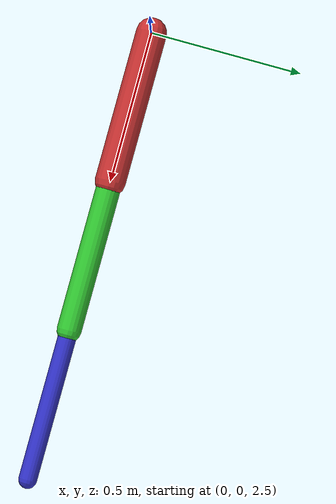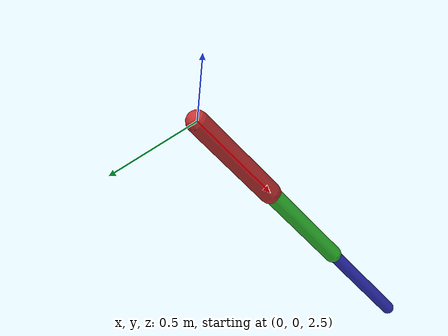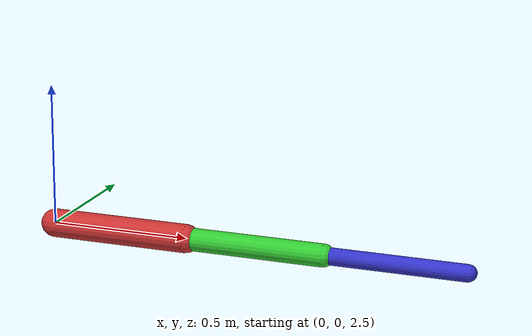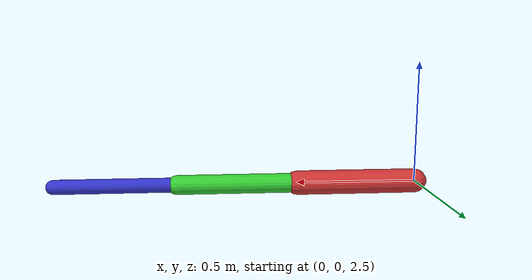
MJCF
<mujoco model="triple_pendulum">
      <option timestep="0.002" gravity="0 0 -9.81"/>
      <visual>
        <rgba haze="0.15 0.25 0.35 1"/>
        <quality shadowsize="2048"/>
      </visual>
      <asset>
        <texture type="skybox" builtin="gradient" rgb1="0.3 0.5 0.7" rgb2="0 0 0" width="512" height="512"/>
      </asset>

      <worldbody>
        <light diffuse=".5 .5 .5" pos="0 0 3" dir="0 0 -1"/>
        <geom type="plane" size="2 2 0.1" rgba=".9 .9 .9 1"/>

        <body pos="0 0 2.5" euler="0 0 0">
          <joint name="joint1" type="hinge" axis="0 1 0" pos="0 0 0" damping="0.2"/>
          <geom type="capsule" size="0.05" fromto="0 0 0 0.5 0 0" rgba="0.8 0.2 0.2 1" mass="1"/>

          <body pos="0.5 0 0">
            <joint name="joint2" type="hinge" axis="0 1 0" pos="0 0 0" damping="0.2"/>
            <geom type="capsule" size="0.04" fromto="0 0 0 0.5 0 0" rgba="0.2 0.8 0.2 1" mass="1"/>

            <body pos="0.5 0 0">
              <joint name="joint3" type="hinge" axis="0 1 0" pos="0 0 0" damping="0.2"/>
              <geom type="capsule" size="0.03" fromto="0 0 0 0.5 0 0" rgba="0.2 0.2 0.8 1" mass="1"/>
              <site name="tip" pos="0.5 0 0"/>
            </body>
          </body>
        </body>
      </worldbody>

      <actuator>
        <motor name="torque1" joint="joint1" gear="1" ctrllimited="true" ctrlrange="-50 50"/>
        <motor name="torque2" joint="joint2" gear="1" ctrllimited="true" ctrlrange="-30 30"/>
        <motor name="torque3" joint="joint3" gear="1" ctrllimited="true" ctrlrange="-20 20"/>
      </actuator>
    </mujoco>
